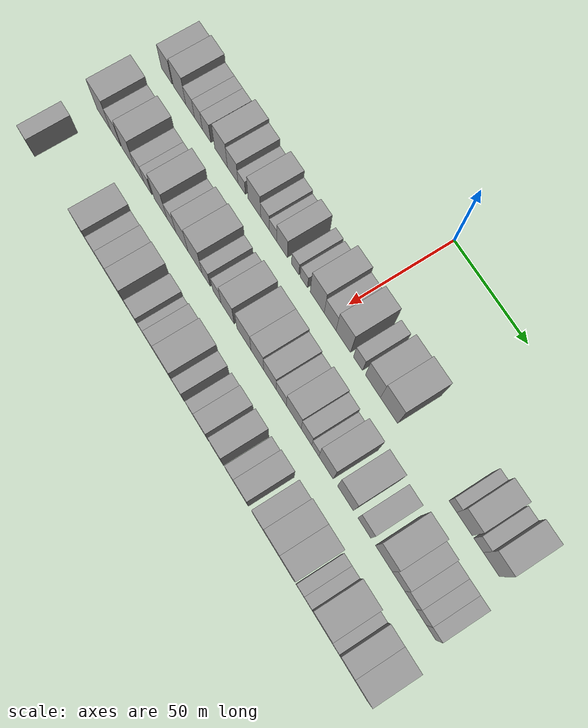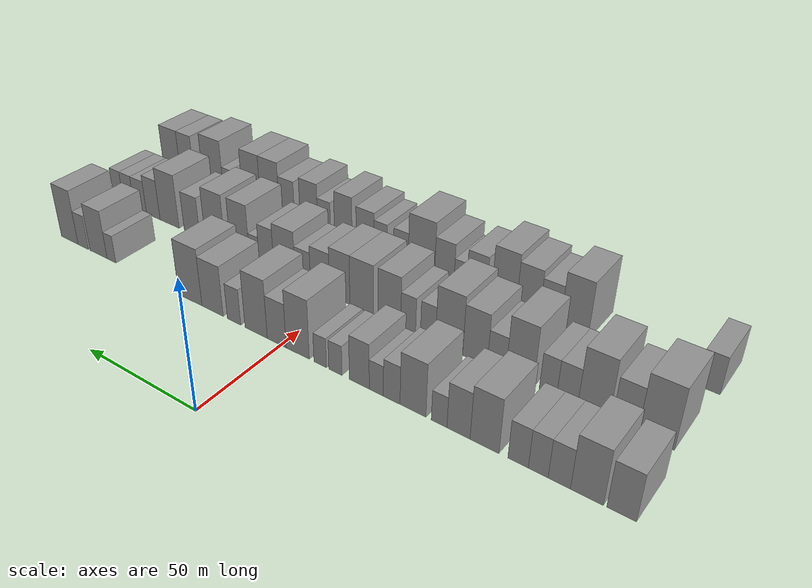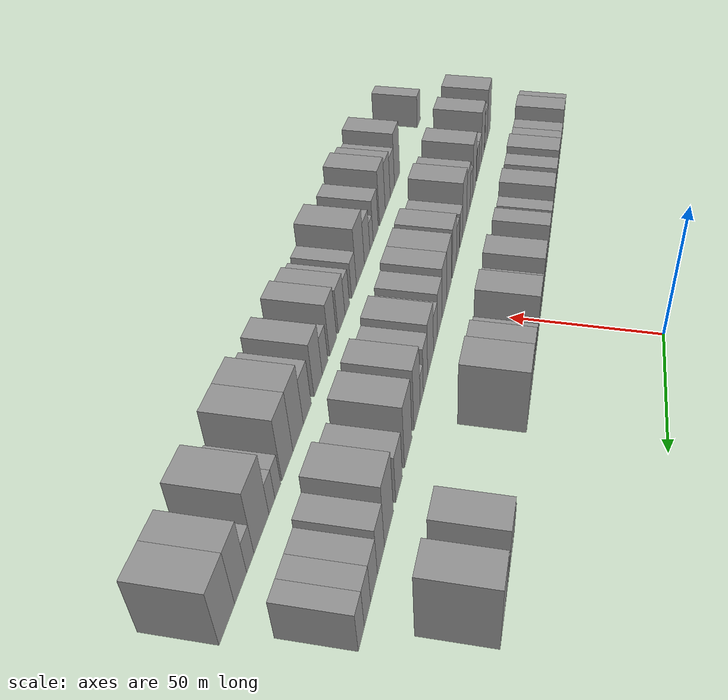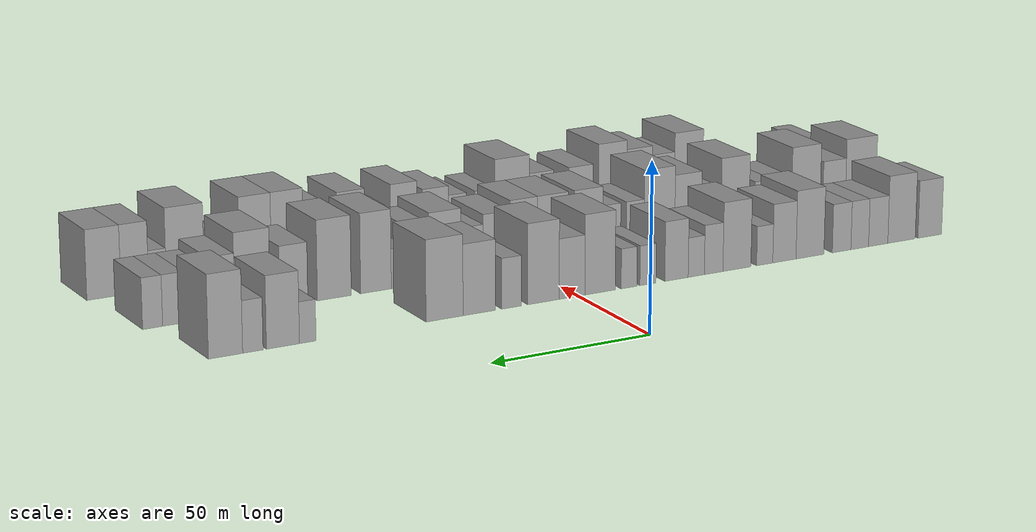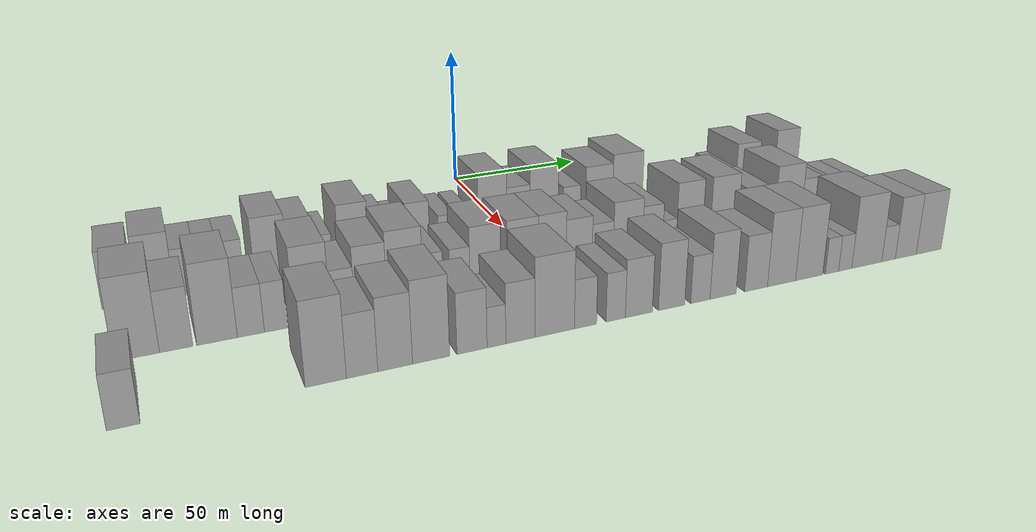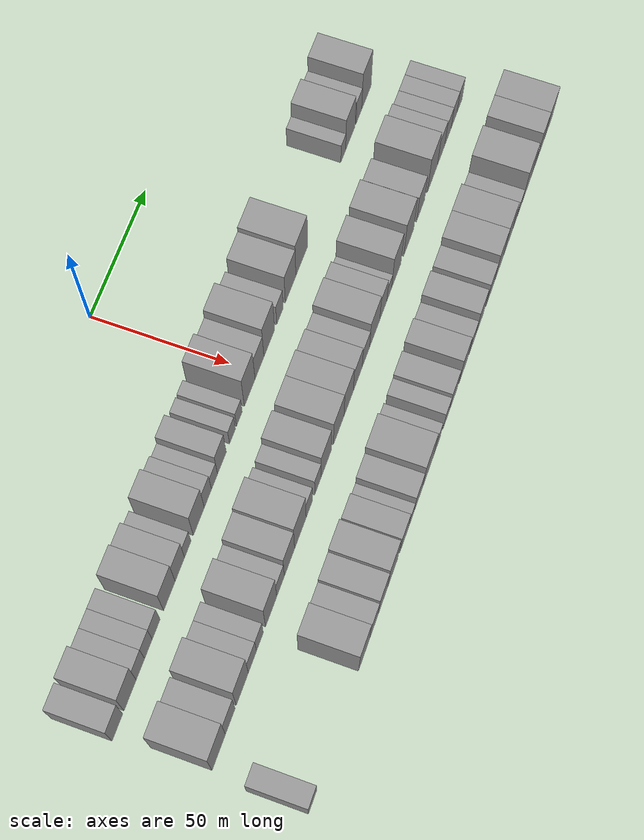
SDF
<sdf version="1.6">
 <world name="default">
  <model name="building_29">
   <static>1</static>
   <pose>50.0000 -123.2638 0 0.000000 0.000000 0.000000</pose>
   <link name="link">
    <pose>0 0 9.00 0 0 0</pose>
    <collision name="collision"><geometry><box><size>20.0000 8.7524 18.0000</size></box></geometry></collision>
    <visual name="visual">
     <cast_shadows>0</cast_shadows>
     <geometry><box><size>20.0000 8.7524 18.0000</size></box></geometry>
     <material>
      <script>
       <uri>model://grey_wall/materials/scripts</uri>
       <uri>model://grey_wall/materials/textures</uri>
       <name>vrc/grey_wall</name>
      </script>
     </material>
    </visual>
   </link>
  </model>
  <model name="building_30">
   <static>1</static>
   <pose>50.0000 -112.8413 0 0.000000 0.000000 0.000000</pose>
   <link name="link">
    <pose>0 0 10.50 0 0 0</pose>
    <collision name="collision"><geometry><box><size>20.0000 10.0927 21.0000</size></box></geometry></collision>
    <visual name="visual">
     <cast_shadows>0</cast_shadows>
     <geometry><box><size>20.0000 10.0927 21.0000</size></box></geometry>
     <material>
      <script>
       <uri>model://grey_wall/materials/scripts</uri>
       <uri>model://grey_wall/materials/textures</uri>
       <name>vrc/grey_wall</name>
      </script>
     </material>
    </visual>
   </link>
  </model>
  <model name="building_31">
   <static>1</static>
   <pose>50.0000 -104.2819 0 0.000000 0.000000 0.000000</pose>
   <link name="link">
    <pose>0 0 7.50 0 0 0</pose>
    <collision name="collision"><geometry><box><size>20.0000 7.0259 15.0000</size></box></geometry></collision>
    <visual name="visual">
     <cast_shadows>0</cast_shadows>
     <geometry><box><size>20.0000 7.0259 15.0000</size></box></geometry>
     <material>
      <script>
       <uri>model://grey_wall/materials/scripts</uri>
       <uri>model://grey_wall/materials/textures</uri>
       <name>vrc/grey_wall</name>
      </script>
     </material>
    </visual>
   </link>
  </model>
  <model name="building_32">
   <static>1</static>
   <pose>50.0000 -97.5649 0 0.000000 0.000000 0.000000</pose>
   <link name="link">
    <pose>0 0 7.50 0 0 0</pose>
    <collision name="collision"><geometry><box><size>20.0000 6.4082 15.0000</size></box></geometry></collision>
    <visual name="visual">
     <cast_shadows>0</cast_shadows>
     <geometry><box><size>20.0000 6.4082 15.0000</size></box></geometry>
     <material>
      <script>
       <uri>model://grey_wall/materials/scripts</uri>
       <uri>model://grey_wall/materials/textures</uri>
       <name>vrc/grey_wall</name>
      </script>
     </material>
    </visual>
   </link>
  </model>
  <model name="building_33">
   <static>1</static>
   <pose>50.0000 -91.0051 0 0.000000 0.000000 0.000000</pose>
   <link name="link">
    <pose>0 0 7.50 0 0 0</pose>
    <collision name="collision"><geometry><box><size>20.0000 6.7113 15.0000</size></box></geometry></collision>
    <visual name="visual">
     <cast_shadows>0</cast_shadows>
     <geometry><box><size>20.0000 6.7113 15.0000</size></box></geometry>
     <material>
      <script>
       <uri>model://grey_wall/materials/scripts</uri>
       <uri>model://grey_wall/materials/textures</uri>
       <name>vrc/grey_wall</name>
      </script>
     </material>
    </visual>
   </link>
  </model>
  <model name="building_34">
   <static>1</static>
   <pose>50.0000 -79.6715 0 0.000000 0.000000 0.000000</pose>
   <link name="link">
    <pose>0 0 10.50 0 0 0</pose>
    <collision name="collision"><geometry><box><size>20.0000 9.9561 21.0000</size></box></geometry></collision>
    <visual name="visual">
     <cast_shadows>0</cast_shadows>
     <geometry><box><size>20.0000 9.9561 21.0000</size></box></geometry>
     <material>
      <script>
       <uri>model://grey_wall/materials/scripts</uri>
       <uri>model://grey_wall/materials/textures</uri>
       <name>vrc/grey_wall</name>
      </script>
     </material>
    </visual>
   </link>
  </model>
  <model name="building_35">
   <static>1</static>
   <pose>50.0000 -70.5820 0 0.000000 0.000000 0.000000</pose>
   <link name="link">
    <pose>0 0 9.00 0 0 0</pose>
    <collision name="collision"><geometry><box><size>20.0000 8.2228 18.0000</size></box></geometry></collision>
    <visual name="visual">
     <cast_shadows>0</cast_shadows>
     <geometry><box><size>20.0000 8.2228 18.0000</size></box></geometry>
     <material>
      <script>
       <uri>model://grey_wall/materials/scripts</uri>
       <uri>model://grey_wall/materials/textures</uri>
       <name>vrc/grey_wall</name>
      </script>
     </material>
    </visual>
   </link>
  </model>
  <model name="building_36">
   <static>1</static>
   <pose>50.0000 -63.6314 0 0.000000 0.000000 0.000000</pose>
   <link name="link">
    <pose>0 0 6.00 0 0 0</pose>
    <collision name="collision"><geometry><box><size>20.0000 5.6785 12.0000</size></box></geometry></collision>
    <visual name="visual">
     <cast_shadows>0</cast_shadows>
     <geometry><box><size>20.0000 5.6785 12.0000</size></box></geometry>
     <material>
      <script>
       <uri>model://grey_wall/materials/scripts</uri>
       <uri>model://grey_wall/materials/textures</uri>
       <name>vrc/grey_wall</name>
      </script>
     </material>
    </visual>
   </link>
  </model>
  <model name="building_37">
   <static>1</static>
   <pose>50.0000 -53.9282 0 0.000000 0.000000 0.000000</pose>
   <link name="link">
    <pose>0 0 10.50 0 0 0</pose>
    <collision name="collision"><geometry><box><size>20.0000 9.7278 21.0000</size></box></geometry></collision>
    <visual name="visual">
     <cast_shadows>0</cast_shadows>
     <geometry><box><size>20.0000 9.7278 21.0000</size></box></geometry>
     <material>
      <script>
       <uri>model://grey_wall/materials/scripts</uri>
       <uri>model://grey_wall/materials/textures</uri>
       <name>vrc/grey_wall</name>
      </script>
     </material>
    </visual>
   </link>
  </model>
  <model name="building_38">
   <static>1</static>
   <pose>50.0000 -45.8464 0 0.000000 0.000000 0.000000</pose>
   <link name="link">
    <pose>0 0 7.50 0 0 0</pose>
    <collision name="collision"><geometry><box><size>20.0000 6.4358 15.0000</size></box></geometry></collision>
    <visual name="visual">
     <cast_shadows>0</cast_shadows>
     <geometry><box><size>20.0000 6.4358 15.0000</size></box></geometry>
     <material>
      <script>
       <uri>model://grey_wall/materials/scripts</uri>
       <uri>model://grey_wall/materials/textures</uri>
       <name>vrc/grey_wall</name>
      </script>
     </material>
    </visual>
   </link>
  </model>
  <model name="building_39">
   <static>1</static>
   <pose>50.0000 -39.8545 0 0.000000 0.000000 0.000000</pose>
   <link name="link">
    <pose>0 0 6.00 0 0 0</pose>
    <collision name="collision"><geometry><box><size>20.0000 5.5482 12.0000</size></box></geometry></collision>
    <visual name="visual">
     <cast_shadows>0</cast_shadows>
     <geometry><box><size>20.0000 5.5482 12.0000</size></box></geometry>
     <material>
      <script>
       <uri>model://grey_wall/materials/scripts</uri>
       <uri>model://grey_wall/materials/textures</uri>
       <name>vrc/grey_wall</name>
      </script>
     </material>
    </visual>
   </link>
  </model>
  <model name="building_40">
   <static>1</static>
   <pose>50.0000 -33.0967 0 0.000000 0.000000 0.000000</pose>
   <link name="link">
    <pose>0 0 9.00 0 0 0</pose>
    <collision name="collision"><geometry><box><size>20.0000 7.9673 18.0000</size></box></geometry></collision>
    <visual name="visual">
     <cast_shadows>0</cast_shadows>
     <geometry><box><size>20.0000 7.9673 18.0000</size></box></geometry>
     <material>
      <script>
       <uri>model://grey_wall/materials/scripts</uri>
       <uri>model://grey_wall/materials/textures</uri>
       <name>vrc/grey_wall</name>
      </script>
     </material>
    </visual>
   </link>
  </model>
  <model name="building_41">
   <static>1</static>
   <pose>50.0000 -23.3904 0 0.000000 0.000000 0.000000</pose>
   <link name="link">
    <pose>0 0 6.00 0 0 0</pose>
    <collision name="collision"><geometry><box><size>20.0000 5.4453 12.0000</size></box></geometry></collision>
    <visual name="visual">
     <cast_shadows>0</cast_shadows>
     <geometry><box><size>20.0000 5.4453 12.0000</size></box></geometry>
     <material>
      <script>
       <uri>model://grey_wall/materials/scripts</uri>
       <uri>model://grey_wall/materials/textures</uri>
       <name>vrc/grey_wall</name>
      </script>
     </material>
    </visual>
   </link>
  </model>
  <model name="building_42">
   <static>1</static>
   <pose>50.0000 -17.0258 0 0.000000 0.000000 0.000000</pose>
   <link name="link">
    <pose>0 0 6.00 0 0 0</pose>
    <collision name="collision"><geometry><box><size>20.0000 5.2839 12.0000</size></box></geometry></collision>
    <visual name="visual">
     <cast_shadows>0</cast_shadows>
     <geometry><box><size>20.0000 5.2839 12.0000</size></box></geometry>
     <material>
      <script>
       <uri>model://grey_wall/materials/scripts</uri>
       <uri>model://grey_wall/materials/textures</uri>
       <name>vrc/grey_wall</name>
      </script>
     </material>
    </visual>
   </link>
  </model>
  <model name="building_43">
   <static>1</static>
   <pose>50.0000 -7.3435 0 0.000000 0.000000 0.000000</pose>
   <link name="link">
    <pose>0 0 12.00 0 0 0</pose>
    <collision name="collision"><geometry><box><size>20.0000 10.0807 24.0000</size></box></geometry></collision>
    <visual name="visual">
     <cast_shadows>0</cast_shadows>
     <geometry><box><size>20.0000 10.0807 24.0000</size></box></geometry>
     <material>
      <script>
       <uri>model://grey_wall/materials/scripts</uri>
       <uri>model://grey_wall/materials/textures</uri>
       <name>vrc/grey_wall</name>
      </script>
     </material>
    </visual>
   </link>
  </model>
  <model name="building_44">
   <static>1</static>
   <pose>50.0000 1.9351 0 0.000000 0.000000 0.000000</pose>
   <link name="link">
    <pose>0 0 9.00 0 0 0</pose>
    <collision name="collision"><geometry><box><size>20.0000 8.4766 18.0000</size></box></geometry></collision>
    <visual name="visual">
     <cast_shadows>0</cast_shadows>
     <geometry><box><size>20.0000 8.4766 18.0000</size></box></geometry>
     <material>
      <script>
       <uri>model://grey_wall/materials/scripts</uri>
       <uri>model://grey_wall/materials/textures</uri>
       <name>vrc/grey_wall</name>
      </script>
     </material>
    </visual>
   </link>
  </model>
  <model name="building_45">
   <static>1</static>
   <pose>50.0000 11.3053 0 0.000000 0.000000 0.000000</pose>
   <link name="link">
    <pose>0 0 12.00 0 0 0</pose>
    <collision name="collision"><geometry><box><size>20.0000 10.2639 24.0000</size></box></geometry></collision>
    <visual name="visual">
     <cast_shadows>0</cast_shadows>
     <geometry><box><size>20.0000 10.2639 24.0000</size></box></geometry>
     <material>
      <script>
       <uri>model://grey_wall/materials/scripts</uri>
       <uri>model://grey_wall/materials/textures</uri>
       <name>vrc/grey_wall</name>
      </script>
     </material>
    </visual>
   </link>
  </model>
  <model name="building_46">
   <static>1</static>
   <pose>50.0000 21.6280 0 0.000000 0.000000 0.000000</pose>
   <link name="link">
    <pose>0 0 7.50 0 0 0</pose>
    <collision name="collision"><geometry><box><size>20.0000 6.3814 15.0000</size></box></geometry></collision>
    <visual name="visual">
     <cast_shadows>0</cast_shadows>
     <geometry><box><size>20.0000 6.3814 15.0000</size></box></geometry>
     <material>
      <script>
       <uri>model://grey_wall/materials/scripts</uri>
       <uri>model://grey_wall/materials/textures</uri>
       <name>vrc/grey_wall</name>
      </script>
     </material>
    </visual>
   </link>
  </model>
  <model name="building_47">
   <static>1</static>
   <pose>50.0000 32.0305 0 0.000000 0.000000 0.000000</pose>
   <link name="link">
    <pose>0 0 10.50 0 0 0</pose>
    <collision name="collision"><geometry><box><size>20.0000 10.4237 21.0000</size></box></geometry></collision>
    <visual name="visual">
     <cast_shadows>0</cast_shadows>
     <geometry><box><size>20.0000 10.4237 21.0000</size></box></geometry>
     <material>
      <script>
       <uri>model://grey_wall/materials/scripts</uri>
       <uri>model://grey_wall/materials/textures</uri>
       <name>vrc/grey_wall</name>
      </script>
     </material>
    </visual>
   </link>
  </model>
  <model name="building_48">
   <static>1</static>
   <pose>50.0000 43.1093 0 0.000000 0.000000 0.000000</pose>
   <link name="link">
    <pose>0 0 12.00 0 0 0</pose>
    <collision name="collision"><geometry><box><size>20.0000 11.7338 24.0000</size></box></geometry></collision>
    <visual name="visual">
     <cast_shadows>0</cast_shadows>
     <geometry><box><size>20.0000 11.7338 24.0000</size></box></geometry>
     <material>
      <script>
       <uri>model://grey_wall/materials/scripts</uri>
       <uri>model://grey_wall/materials/textures</uri>
       <name>vrc/grey_wall</name>
      </script>
     </material>
    </visual>
   </link>
  </model>
  <model name="building_49">
   <static>1</static>
   <pose>50.0000 85.4899 0 0.000000 0.000000 0.000000</pose>
   <link name="link">
    <pose>0 0 6.00 0 0 0</pose>
    <collision name="collision"><geometry><box><size>20.0000 5.0091 12.0000</size></box></geometry></collision>
    <visual name="visual">
     <cast_shadows>0</cast_shadows>
     <geometry><box><size>20.0000 5.0091 12.0000</size></box></geometry>
     <material>
      <script>
       <uri>model://grey_wall/materials/scripts</uri>
       <uri>model://grey_wall/materials/textures</uri>
       <name>vrc/grey_wall</name>
      </script>
     </material>
    </visual>
   </link>
  </model>
  <model name="building_50">
   <static>1</static>
   <pose>50.0000 92.9599 0 0.000000 0.000000 0.000000</pose>
   <link name="link">
    <pose>0 0 10.50 0 0 0</pose>
    <collision name="collision"><geometry><box><size>20.0000 9.9309 21.0000</size></box></geometry></collision>
    <visual name="visual">
     <cast_shadows>0</cast_shadows>
     <geometry><box><size>20.0000 9.9309 21.0000</size></box></geometry>
     <material>
      <script>
       <uri>model://grey_wall/materials/scripts</uri>
       <uri>model://grey_wall/materials/textures</uri>
       <name>vrc/grey_wall</name>
      </script>
     </material>
    </visual>
   </link>
  </model>
  <model name="building_51">
   <static>1</static>
   <pose>50.0000 101.9746 0 0.000000 0.000000 0.000000</pose>
   <link name="link">
    <pose>0 0 7.50 0 0 0</pose>
    <collision name="collision"><geometry><box><size>20.0000 6.0986 15.0000</size></box></geometry></collision>
    <visual name="visual">
     <cast_shadows>0</cast_shadows>
     <geometry><box><size>20.0000 6.0986 15.0000</size></box></geometry>
     <material>
      <script>
       <uri>model://grey_wall/materials/scripts</uri>
       <uri>model://grey_wall/materials/textures</uri>
       <name>vrc/grey_wall</name>
      </script>
     </material>
    </visual>
   </link>
  </model>
  <model name="building_52">
   <static>1</static>
   <pose>50.0000 110.0865 0 0.000000 0.000000 0.000000</pose>
   <link name="link">
    <pose>0 0 12.00 0 0 0</pose>
    <collision name="collision"><geometry><box><size>20.0000 10.1251 24.0000</size></box></geometry></collision>
    <visual name="visual">
     <cast_shadows>0</cast_shadows>
     <geometry><box><size>20.0000 10.1251 24.0000</size></box></geometry>
     <material>
      <script>
       <uri>model://grey_wall/materials/scripts</uri>
       <uri>model://grey_wall/materials/textures</uri>
       <name>vrc/grey_wall</name>
      </script>
     </material>
    </visual>
   </link>
  </model>
  <model name="building_102">
   <static>1</static>
   <pose>82.0000 -119.8057 0 0.000000 0.000000 0.000000</pose>
   <link name="link">
    <pose>0 0 12.00 0 0 0</pose>
    <collision name="collision"><geometry><box><size>20.0000 11.4478 24.0000</size></box></geometry></collision>
    <visual name="visual">
     <cast_shadows>0</cast_shadows>
     <geometry><box><size>20.0000 11.4478 24.0000</size></box></geometry>
     <material>
      <script>
       <uri>model://grey_wall/materials/scripts</uri>
       <uri>model://grey_wall/materials/textures</uri>
       <name>vrc/grey_wall</name>
      </script>
     </material>
    </visual>
   </link>
  </model>
  <model name="building_103">
   <static>1</static>
   <pose>82.0000 -109.8684 0 0.000000 0.000000 0.000000</pose>
   <link name="link">
    <pose>0 0 9.00 0 0 0</pose>
    <collision name="collision"><geometry><box><size>20.0000 8.4266 18.0000</size></box></geometry></collision>
    <visual name="visual">
     <cast_shadows>0</cast_shadows>
     <geometry><box><size>20.0000 8.4266 18.0000</size></box></geometry>
     <material>
      <script>
       <uri>model://grey_wall/materials/scripts</uri>
       <uri>model://grey_wall/materials/textures</uri>
       <name>vrc/grey_wall</name>
      </script>
     </material>
    </visual>
   </link>
  </model>
  <model name="building_104">
   <static>1</static>
   <pose>82.0000 -99.3650 0 0.000000 0.000000 0.000000</pose>
   <link name="link">
    <pose>0 0 12.00 0 0 0</pose>
    <collision name="collision"><geometry><box><size>20.0000 10.5802 24.0000</size></box></geometry></collision>
    <visual name="visual">
     <cast_shadows>0</cast_shadows>
     <geometry><box><size>20.0000 10.5802 24.0000</size></box></geometry>
     <material>
      <script>
       <uri>model://grey_wall/materials/scripts</uri>
       <uri>model://grey_wall/materials/textures</uri>
       <name>vrc/grey_wall</name>
      </script>
     </material>
    </visual>
   </link>
  </model>
  <model name="building_105">
   <static>1</static>
   <pose>82.0000 -90.4520 0 0.000000 0.000000 0.000000</pose>
   <link name="link">
    <pose>0 0 7.50 0 0 0</pose>
    <collision name="collision"><geometry><box><size>20.0000 7.2458 15.0000</size></box></geometry></collision>
    <visual name="visual">
     <cast_shadows>0</cast_shadows>
     <geometry><box><size>20.0000 7.2458 15.0000</size></box></geometry>
     <material>
      <script>
       <uri>model://grey_wall/materials/scripts</uri>
       <uri>model://grey_wall/materials/textures</uri>
       <name>vrc/grey_wall</name>
      </script>
     </material>
    </visual>
   </link>
  </model>
  <model name="building_106">
   <static>1</static>
   <pose>82.0000 -83.7524 0 0.000000 0.000000 0.000000</pose>
   <link name="link">
    <pose>0 0 7.50 0 0 0</pose>
    <collision name="collision"><geometry><box><size>20.0000 6.1534 15.0000</size></box></geometry></collision>
    <visual name="visual">
     <cast_shadows>0</cast_shadows>
     <geometry><box><size>20.0000 6.1534 15.0000</size></box></geometry>
     <material>
      <script>
       <uri>model://grey_wall/materials/scripts</uri>
       <uri>model://grey_wall/materials/textures</uri>
       <name>vrc/grey_wall</name>
      </script>
     </material>
    </visual>
   </link>
  </model>
  <model name="building_107">
   <static>1</static>
   <pose>82.0000 -73.6053 0 0.000000 0.000000 0.000000</pose>
   <link name="link">
    <pose>0 0 12.00 0 0 0</pose>
    <collision name="collision"><geometry><box><size>20.0000 10.1406 24.0000</size></box></geometry></collision>
    <visual name="visual">
     <cast_shadows>0</cast_shadows>
     <geometry><box><size>20.0000 10.1406 24.0000</size></box></geometry>
     <material>
      <script>
       <uri>model://grey_wall/materials/scripts</uri>
       <uri>model://grey_wall/materials/textures</uri>
       <name>vrc/grey_wall</name>
      </script>
     </material>
    </visual>
   </link>
  </model>
  <model name="building_108">
   <static>1</static>
   <pose>82.0000 -65.0375 0 0.000000 0.000000 0.000000</pose>
   <link name="link">
    <pose>0 0 7.50 0 0 0</pose>
    <collision name="collision"><geometry><box><size>20.0000 6.9950 15.0000</size></box></geometry></collision>
    <visual name="visual">
     <cast_shadows>0</cast_shadows>
     <geometry><box><size>20.0000 6.9950 15.0000</size></box></geometry>
     <material>
      <script>
       <uri>model://grey_wall/materials/scripts</uri>
       <uri>model://grey_wall/materials/textures</uri>
       <name>vrc/grey_wall</name>
      </script>
     </material>
    </visual>
   </link>
  </model>
  <model name="building_109">
   <static>1</static>
   <pose>82.0000 -56.7947 0 0.000000 0.000000 0.000000</pose>
   <link name="link">
    <pose>0 0 10.50 0 0 0</pose>
    <collision name="collision"><geometry><box><size>20.0000 9.4907 21.0000</size></box></geometry></collision>
    <visual name="visual">
     <cast_shadows>0</cast_shadows>
     <geometry><box><size>20.0000 9.4907 21.0000</size></box></geometry>
     <material>
      <script>
       <uri>model://grey_wall/materials/scripts</uri>
       <uri>model://grey_wall/materials/textures</uri>
       <name>vrc/grey_wall</name>
      </script>
     </material>
    </visual>
   </link>
  </model>
  <model name="building_110">
   <static>1</static>
   <pose>82.0000 -46.6525 0 0.000000 0.000000 0.000000</pose>
   <link name="link">
    <pose>0 0 12.00 0 0 0</pose>
    <collision name="collision"><geometry><box><size>20.0000 10.7937 24.0000</size></box></geometry></collision>
    <visual name="visual">
     <cast_shadows>0</cast_shadows>
     <geometry><box><size>20.0000 10.7937 24.0000</size></box></geometry>
     <material>
      <script>
       <uri>model://grey_wall/materials/scripts</uri>
       <uri>model://grey_wall/materials/textures</uri>
       <name>vrc/grey_wall</name>
      </script>
     </material>
    </visual>
   </link>
  </model>
  <model name="building_111">
   <static>1</static>
   <pose>82.0000 -38.1685 0 0.000000 0.000000 0.000000</pose>
   <link name="link">
    <pose>0 0 7.50 0 0 0</pose>
    <collision name="collision"><geometry><box><size>20.0000 6.1743 15.0000</size></box></geometry></collision>
    <visual name="visual">
     <cast_shadows>0</cast_shadows>
     <geometry><box><size>20.0000 6.1743 15.0000</size></box></geometry>
     <material>
      <script>
       <uri>model://grey_wall/materials/scripts</uri>
       <uri>model://grey_wall/materials/textures</uri>
       <name>vrc/grey_wall</name>
      </script>
     </material>
    </visual>
   </link>
  </model>
  <model name="building_112">
   <static>1</static>
   <pose>82.0000 -29.9631 0 0.000000 0.000000 0.000000</pose>
   <link name="link">
    <pose>0 0 7.50 0 0 0</pose>
    <collision name="collision"><geometry><box><size>20.0000 6.2363 15.0000</size></box></geometry></collision>
    <visual name="visual">
     <cast_shadows>0</cast_shadows>
     <geometry><box><size>20.0000 6.2363 15.0000</size></box></geometry>
     <material>
      <script>
       <uri>model://grey_wall/materials/scripts</uri>
       <uri>model://grey_wall/materials/textures</uri>
       <name>vrc/grey_wall</name>
      </script>
     </material>
    </visual>
   </link>
  </model>
  <model name="building_113">
   <static>1</static>
   <pose>82.0000 -21.9570 0 0.000000 0.000000 0.000000</pose>
   <link name="link">
    <pose>0 0 10.50 0 0 0</pose>
    <collision name="collision"><geometry><box><size>20.0000 9.7760 21.0000</size></box></geometry></collision>
    <visual name="visual">
     <cast_shadows>0</cast_shadows>
     <geometry><box><size>20.0000 9.7760 21.0000</size></box></geometry>
     <material>
      <script>
       <uri>model://grey_wall/materials/scripts</uri>
       <uri>model://grey_wall/materials/textures</uri>
       <name>vrc/grey_wall</name>
      </script>
     </material>
    </visual>
   </link>
  </model>
  <model name="building_114">
   <static>1</static>
   <pose>82.0000 -9.8569 0 0.000000 0.000000 0.000000</pose>
   <link name="link">
    <pose>0 0 10.50 0 0 0</pose>
    <collision name="collision"><geometry><box><size>20.0000 10.4240 21.0000</size></box></geometry></collision>
    <visual name="visual">
     <cast_shadows>0</cast_shadows>
     <geometry><box><size>20.0000 10.4240 21.0000</size></box></geometry>
     <material>
      <script>
       <uri>model://grey_wall/materials/scripts</uri>
       <uri>model://grey_wall/materials/textures</uri>
       <name>vrc/grey_wall</name>
      </script>
     </material>
    </visual>
   </link>
  </model>
  <model name="building_115">
   <static>1</static>
   <pose>82.0000 -0.0208 0 0.000000 0.000000 0.000000</pose>
   <link name="link">
    <pose>0 0 10.50 0 0 0</pose>
    <collision name="collision"><geometry><box><size>20.0000 9.2483 21.0000</size></box></geometry></collision>
    <visual name="visual">
     <cast_shadows>0</cast_shadows>
     <geometry><box><size>20.0000 9.2483 21.0000</size></box></geometry>
     <material>
      <script>
       <uri>model://grey_wall/materials/scripts</uri>
       <uri>model://grey_wall/materials/textures</uri>
       <name>vrc/grey_wall</name>
      </script>
     </material>
    </visual>
   </link>
  </model>
  <model name="building_116">
   <static>1</static>
   <pose>82.0000 9.0560 0 0.000000 0.000000 0.000000</pose>
   <link name="link">
    <pose>0 0 9.00 0 0 0</pose>
    <collision name="collision"><geometry><box><size>20.0000 8.9052 18.0000</size></box></geometry></collision>
    <visual name="visual">
     <cast_shadows>0</cast_shadows>
     <geometry><box><size>20.0000 8.9052 18.0000</size></box></geometry>
     <material>
      <script>
       <uri>model://grey_wall/materials/scripts</uri>
       <uri>model://grey_wall/materials/textures</uri>
       <name>vrc/grey_wall</name>
      </script>
     </material>
    </visual>
   </link>
  </model>
  <model name="building_117">
   <static>1</static>
   <pose>82.0000 17.2116 0 0.000000 0.000000 0.000000</pose>
   <link name="link">
    <pose>0 0 7.50 0 0 0</pose>
    <collision name="collision"><geometry><box><size>20.0000 7.4060 15.0000</size></box></geometry></collision>
    <visual name="visual">
     <cast_shadows>0</cast_shadows>
     <geometry><box><size>20.0000 7.4060 15.0000</size></box></geometry>
     <material>
      <script>
       <uri>model://grey_wall/materials/scripts</uri>
       <uri>model://grey_wall/materials/textures</uri>
       <name>vrc/grey_wall</name>
      </script>
     </material>
    </visual>
   </link>
  </model>
  <model name="building_118">
   <static>1</static>
   <pose>82.0000 26.1264 0 0.000000 0.000000 0.000000</pose>
   <link name="link">
    <pose>0 0 10.50 0 0 0</pose>
    <collision name="collision"><geometry><box><size>20.0000 10.4236 21.0000</size></box></geometry></collision>
    <visual name="visual">
     <cast_shadows>0</cast_shadows>
     <geometry><box><size>20.0000 10.4236 21.0000</size></box></geometry>
     <material>
      <script>
       <uri>model://grey_wall/materials/scripts</uri>
       <uri>model://grey_wall/materials/textures</uri>
       <name>vrc/grey_wall</name>
      </script>
     </material>
    </visual>
   </link>
  </model>
  <model name="building_119">
   <static>1</static>
   <pose>82.0000 35.0071 0 0.000000 0.000000 0.000000</pose>
   <link name="link">
    <pose>0 0 9.00 0 0 0</pose>
    <collision name="collision"><geometry><box><size>20.0000 7.3377 18.0000</size></box></geometry></collision>
    <visual name="visual">
     <cast_shadows>0</cast_shadows>
     <geometry><box><size>20.0000 7.3377 18.0000</size></box></geometry>
     <material>
      <script>
       <uri>model://grey_wall/materials/scripts</uri>
       <uri>model://grey_wall/materials/textures</uri>
       <name>vrc/grey_wall</name>
      </script>
     </material>
    </visual>
   </link>
  </model>
  <model name="building_120">
   <static>1</static>
   <pose>82.0000 41.1804 0 0.000000 0.000000 0.000000</pose>
   <link name="link">
    <pose>0 0 6.00 0 0 0</pose>
    <collision name="collision"><geometry><box><size>20.0000 5.0089 12.0000</size></box></geometry></collision>
    <visual name="visual">
     <cast_shadows>0</cast_shadows>
     <geometry><box><size>20.0000 5.0089 12.0000</size></box></geometry>
     <material>
      <script>
       <uri>model://grey_wall/materials/scripts</uri>
       <uri>model://grey_wall/materials/textures</uri>
       <name>vrc/grey_wall</name>
      </script>
     </material>
    </visual>
   </link>
  </model>
  <model name="building_121">
   <static>1</static>
   <pose>82.0000 48.6120 0 0.000000 0.000000 0.000000</pose>
   <link name="link">
    <pose>0 0 12.00 0 0 0</pose>
    <collision name="collision"><geometry><box><size>20.0000 9.8542 24.0000</size></box></geometry></collision>
    <visual name="visual">
     <cast_shadows>0</cast_shadows>
     <geometry><box><size>20.0000 9.8542 24.0000</size></box></geometry>
     <material>
      <script>
       <uri>model://grey_wall/materials/scripts</uri>
       <uri>model://grey_wall/materials/textures</uri>
       <name>vrc/grey_wall</name>
      </script>
     </material>
    </visual>
   </link>
  </model>
  <model name="building_122">
   <static>1</static>
   <pose>82.0000 61.9054 0 0.000000 0.000000 0.000000</pose>
   <link name="link">
    <pose>0 0 12.00 0 0 0</pose>
    <collision name="collision"><geometry><box><size>20.0000 10.7326 24.0000</size></box></geometry></collision>
    <visual name="visual">
     <cast_shadows>0</cast_shadows>
     <geometry><box><size>20.0000 10.7326 24.0000</size></box></geometry>
     <material>
      <script>
       <uri>model://grey_wall/materials/scripts</uri>
       <uri>model://grey_wall/materials/textures</uri>
       <name>vrc/grey_wall</name>
      </script>
     </material>
    </visual>
   </link>
  </model>
  <model name="building_123">
   <static>1</static>
   <pose>82.0000 74.6354 0 0.000000 0.000000 0.000000</pose>
   <link name="link">
    <pose>0 0 9.00 0 0 0</pose>
    <collision name="collision"><geometry><box><size>20.0000 8.7275 18.0000</size></box></geometry></collision>
    <visual name="visual">
     <cast_shadows>0</cast_shadows>
     <geometry><box><size>20.0000 8.7275 18.0000</size></box></geometry>
     <material>
      <script>
       <uri>model://grey_wall/materials/scripts</uri>
       <uri>model://grey_wall/materials/textures</uri>
       <name>vrc/grey_wall</name>
      </script>
     </material>
    </visual>
   </link>
  </model>
  <model name="building_124">
   <static>1</static>
   <pose>82.0000 87.4886 0 0.000000 0.000000 0.000000</pose>
   <link name="link">
    <pose>0 0 12.00 0 0 0</pose>
    <collision name="collision"><geometry><box><size>20.0000 10.9789 24.0000</size></box></geometry></collision>
    <visual name="visual">
     <cast_shadows>0</cast_shadows>
     <geometry><box><size>20.0000 10.9789 24.0000</size></box></geometry>
     <material>
      <script>
       <uri>model://grey_wall/materials/scripts</uri>
       <uri>model://grey_wall/materials/textures</uri>
       <name>vrc/grey_wall</name>
      </script>
     </material>
    </visual>
   </link>
  </model>
  <model name="building_125">
   <static>1</static>
   <pose>82.0000 97.0021 0 0.000000 0.000000 0.000000</pose>
   <link name="link">
    <pose>0 0 9.00 0 0 0</pose>
    <collision name="collision"><geometry><box><size>20.0000 8.0480 18.0000</size></box></geometry></collision>
    <visual name="visual">
     <cast_shadows>0</cast_shadows>
     <geometry><box><size>20.0000 8.0480 18.0000</size></box></geometry>
     <material>
      <script>
       <uri>model://grey_wall/materials/scripts</uri>
       <uri>model://grey_wall/materials/textures</uri>
       <name>vrc/grey_wall</name>
      </script>
     </material>
    </visual>
   </link>
  </model>
  <model name="building_126">
   <static>1</static>
   <pose>82.0000 104.6953 0 0.000000 0.000000 0.000000</pose>
   <link name="link">
    <pose>0 0 7.50 0 0 0</pose>
    <collision name="collision"><geometry><box><size>20.0000 7.3383 15.0000</size></box></geometry></collision>
    <visual name="visual">
     <cast_shadows>0</cast_shadows>
     <geometry><box><size>20.0000 7.3383 15.0000</size></box></geometry>
     <material>
      <script>
       <uri>model://grey_wall/materials/scripts</uri>
       <uri>model://grey_wall/materials/textures</uri>
       <name>vrc/grey_wall</name>
      </script>
     </material>
    </visual>
   </link>
  </model>
  <model name="building_127">
   <static>1</static>
   <pose>82.0000 111.6538 0 0.000000 0.000000 0.000000</pose>
   <link name="link">
    <pose>0 0 7.50 0 0 0</pose>
    <collision name="collision"><geometry><box><size>20.0000 6.5787 15.0000</size></box></geometry></collision>
    <visual name="visual">
     <cast_shadows>0</cast_shadows>
     <geometry><box><size>20.0000 6.5787 15.0000</size></box></geometry>
     <material>
      <script>
       <uri>model://grey_wall/materials/scripts</uri>
       <uri>model://grey_wall/materials/textures</uri>
       <name>vrc/grey_wall</name>
      </script>
     </material>
    </visual>
   </link>
  </model>
  <model name="building_128">
   <static>1</static>
   <pose>82.0000 117.9527 0 0.000000 0.000000 0.000000</pose>
   <link name="link">
    <pose>0 0 7.50 0 0 0</pose>
    <collision name="collision"><geometry><box><size>20.0000 6.0192 15.0000</size></box></geometry></collision>
    <visual name="visual">
     <cast_shadows>0</cast_shadows>
     <geometry><box><size>20.0000 6.0192 15.0000</size></box></geometry>
     <material>
      <script>
       <uri>model://grey_wall/materials/scripts</uri>
       <uri>model://grey_wall/materials/textures</uri>
       <name>vrc/grey_wall</name>
      </script>
     </material>
    </visual>
   </link>
  </model>
  <model name="building_177">
   <static>1</static>
   <pose>114.0000 -124.0846 0 0.000000 0.000000 0.000000</pose>
   <link name="link">
    <pose>0 0 7.50 0 0 0</pose>
    <collision name="collision"><geometry><box><size>20.0000 7.3640 15.0000</size></box></geometry></collision>
    <visual name="visual">
     <cast_shadows>0</cast_shadows>
     <geometry><box><size>20.0000 7.3640 15.0000</size></box></geometry>
     <material>
      <script>
       <uri>model://grey_wall/materials/scripts</uri>
       <uri>model://grey_wall/materials/textures</uri>
       <name>vrc/grey_wall</name>
      </script>
     </material>
    </visual>
   </link>
  </model>
  <model name="building_178">
   <static>1</static>
   <pose>114.0000 -76.7485 0 0.000000 0.000000 0.000000</pose>
   <link name="link">
    <pose>0 0 12.00 0 0 0</pose>
    <collision name="collision"><geometry><box><size>20.0000 10.4360 24.0000</size></box></geometry></collision>
    <visual name="visual">
     <cast_shadows>0</cast_shadows>
     <geometry><box><size>20.0000 10.4360 24.0000</size></box></geometry>
     <material>
      <script>
       <uri>model://grey_wall/materials/scripts</uri>
       <uri>model://grey_wall/materials/textures</uri>
       <name>vrc/grey_wall</name>
      </script>
     </material>
    </visual>
   </link>
  </model>
  <model name="building_179">
   <static>1</static>
   <pose>114.0000 -67.4690 0 0.000000 0.000000 0.000000</pose>
   <link name="link">
    <pose>0 0 9.00 0 0 0</pose>
    <collision name="collision"><geometry><box><size>20.0000 8.1229 18.0000</size></box></geometry></collision>
    <visual name="visual">
     <cast_shadows>0</cast_shadows>
     <geometry><box><size>20.0000 8.1229 18.0000</size></box></geometry>
     <material>
      <script>
       <uri>model://grey_wall/materials/scripts</uri>
       <uri>model://grey_wall/materials/textures</uri>
       <name>vrc/grey_wall</name>
      </script>
     </material>
    </visual>
   </link>
  </model>
  <model name="building_180">
   <static>1</static>
   <pose>114.0000 -58.8135 0 0.000000 0.000000 0.000000</pose>
   <link name="link">
    <pose>0 0 10.50 0 0 0</pose>
    <collision name="collision"><geometry><box><size>20.0000 9.1882 21.0000</size></box></geometry></collision>
    <visual name="visual">
     <cast_shadows>0</cast_shadows>
     <geometry><box><size>20.0000 9.1882 21.0000</size></box></geometry>
     <material>
      <script>
       <uri>model://grey_wall/materials/scripts</uri>
       <uri>model://grey_wall/materials/textures</uri>
       <name>vrc/grey_wall</name>
      </script>
     </material>
    </visual>
   </link>
  </model>
  <model name="building_181">
   <static>1</static>
   <pose>114.0000 -49.1539 0 0.000000 0.000000 0.000000</pose>
   <link name="link">
    <pose>0 0 12.00 0 0 0</pose>
    <collision name="collision"><geometry><box><size>20.0000 10.1310 24.0000</size></box></geometry></collision>
    <visual name="visual">
     <cast_shadows>0</cast_shadows>
     <geometry><box><size>20.0000 10.1310 24.0000</size></box></geometry>
     <material>
      <script>
       <uri>model://grey_wall/materials/scripts</uri>
       <uri>model://grey_wall/materials/textures</uri>
       <name>vrc/grey_wall</name>
      </script>
     </material>
    </visual>
   </link>
  </model>
  <model name="building_182">
   <static>1</static>
   <pose>114.0000 -37.8273 0 0.000000 0.000000 0.000000</pose>
   <link name="link">
    <pose>0 0 9.00 0 0 0</pose>
    <collision name="collision"><geometry><box><size>20.0000 8.5222 18.0000</size></box></geometry></collision>
    <visual name="visual">
     <cast_shadows>0</cast_shadows>
     <geometry><box><size>20.0000 8.5222 18.0000</size></box></geometry>
     <material>
      <script>
       <uri>model://grey_wall/materials/scripts</uri>
       <uri>model://grey_wall/materials/textures</uri>
       <name>vrc/grey_wall</name>
      </script>
     </material>
    </visual>
   </link>
  </model>
  <model name="building_183">
   <static>1</static>
   <pose>114.0000 -30.8784 0 0.000000 0.000000 0.000000</pose>
   <link name="link">
    <pose>0 0 6.00 0 0 0</pose>
    <collision name="collision"><geometry><box><size>20.0000 5.3757 12.0000</size></box></geometry></collision>
    <visual name="visual">
     <cast_shadows>0</cast_shadows>
     <geometry><box><size>20.0000 5.3757 12.0000</size></box></geometry>
     <material>
      <script>
       <uri>model://grey_wall/materials/scripts</uri>
       <uri>model://grey_wall/materials/textures</uri>
       <name>vrc/grey_wall</name>
      </script>
     </material>
    </visual>
   </link>
  </model>
  <model name="building_184">
   <static>1</static>
   <pose>114.0000 -23.9341 0 0.000000 0.000000 0.000000</pose>
   <link name="link">
    <pose>0 0 9.00 0 0 0</pose>
    <collision name="collision"><geometry><box><size>20.0000 8.5129 18.0000</size></box></geometry></collision>
    <visual name="visual">
     <cast_shadows>0</cast_shadows>
     <geometry><box><size>20.0000 8.5129 18.0000</size></box></geometry>
     <material>
      <script>
       <uri>model://grey_wall/materials/scripts</uri>
       <uri>model://grey_wall/materials/textures</uri>
       <name>vrc/grey_wall</name>
      </script>
     </material>
    </visual>
   </link>
  </model>
  <model name="building_185">
   <static>1</static>
   <pose>114.0000 -13.7239 0 0.000000 0.000000 0.000000</pose>
   <link name="link">
    <pose>0 0 12.00 0 0 0</pose>
    <collision name="collision"><geometry><box><size>20.0000 11.9074 24.0000</size></box></geometry></collision>
    <visual name="visual">
     <cast_shadows>0</cast_shadows>
     <geometry><box><size>20.0000 11.9074 24.0000</size></box></geometry>
     <material>
      <script>
       <uri>model://grey_wall/materials/scripts</uri>
       <uri>model://grey_wall/materials/textures</uri>
       <name>vrc/grey_wall</name>
      </script>
     </material>
    </visual>
   </link>
  </model>
  <model name="building_186">
   <static>1</static>
   <pose>114.0000 -4.3629 0 0.000000 0.000000 0.000000</pose>
   <link name="link">
    <pose>0 0 7.50 0 0 0</pose>
    <collision name="collision"><geometry><box><size>20.0000 6.8147 15.0000</size></box></geometry></collision>
    <visual name="visual">
     <cast_shadows>0</cast_shadows>
     <geometry><box><size>20.0000 6.8147 15.0000</size></box></geometry>
     <material>
      <script>
       <uri>model://grey_wall/materials/scripts</uri>
       <uri>model://grey_wall/materials/textures</uri>
       <name>vrc/grey_wall</name>
      </script>
     </material>
    </visual>
   </link>
  </model>
  <model name="building_187">
   <static>1</static>
   <pose>114.0000 5.0965 0 0.000000 0.000000 0.000000</pose>
   <link name="link">
    <pose>0 0 7.50 0 0 0</pose>
    <collision name="collision"><geometry><box><size>20.0000 6.1041 15.0000</size></box></geometry></collision>
    <visual name="visual">
     <cast_shadows>0</cast_shadows>
     <geometry><box><size>20.0000 6.1041 15.0000</size></box></geometry>
     <material>
      <script>
       <uri>model://grey_wall/materials/scripts</uri>
       <uri>model://grey_wall/materials/textures</uri>
       <name>vrc/grey_wall</name>
      </script>
     </material>
    </visual>
   </link>
  </model>
  <model name="building_188">
   <static>1</static>
   <pose>114.0000 12.5118 0 0.000000 0.000000 0.000000</pose>
   <link name="link">
    <pose>0 0 9.00 0 0 0</pose>
    <collision name="collision"><geometry><box><size>20.0000 8.7264 18.0000</size></box></geometry></collision>
    <visual name="visual">
     <cast_shadows>0</cast_shadows>
     <geometry><box><size>20.0000 8.7264 18.0000</size></box></geometry>
     <material>
      <script>
       <uri>model://grey_wall/materials/scripts</uri>
       <uri>model://grey_wall/materials/textures</uri>
       <name>vrc/grey_wall</name>
      </script>
     </material>
    </visual>
   </link>
  </model>
  <model name="building_189">
   <static>1</static>
   <pose>114.0000 23.2560 0 0.000000 0.000000 0.000000</pose>
   <link name="link">
    <pose>0 0 10.50 0 0 0</pose>
    <collision name="collision"><geometry><box><size>20.0000 8.7620 21.0000</size></box></geometry></collision>
    <visual name="visual">
     <cast_shadows>0</cast_shadows>
     <geometry><box><size>20.0000 8.7620 21.0000</size></box></geometry>
     <material>
      <script>
       <uri>model://grey_wall/materials/scripts</uri>
       <uri>model://grey_wall/materials/textures</uri>
       <name>vrc/grey_wall</name>
      </script>
     </material>
    </visual>
   </link>
  </model>
  <model name="building_190">
   <static>1</static>
   <pose>114.0000 32.9273 0 0.000000 0.000000 0.000000</pose>
   <link name="link">
    <pose>0 0 7.50 0 0 0</pose>
    <collision name="collision"><geometry><box><size>20.0000 6.5805 15.0000</size></box></geometry></collision>
    <visual name="visual">
     <cast_shadows>0</cast_shadows>
     <geometry><box><size>20.0000 6.5805 15.0000</size></box></geometry>
     <material>
      <script>
       <uri>model://grey_wall/materials/scripts</uri>
       <uri>model://grey_wall/materials/textures</uri>
       <name>vrc/grey_wall</name>
      </script>
     </material>
    </visual>
   </link>
  </model>
  <model name="building_191">
   <static>1</static>
   <pose>114.0000 40.7739 0 0.000000 0.000000 0.000000</pose>
   <link name="link">
    <pose>0 0 10.50 0 0 0</pose>
    <collision name="collision"><geometry><box><size>20.0000 9.1126 21.0000</size></box></geometry></collision>
    <visual name="visual">
     <cast_shadows>0</cast_shadows>
     <geometry><box><size>20.0000 9.1126 21.0000</size></box></geometry>
     <material>
      <script>
       <uri>model://grey_wall/materials/scripts</uri>
       <uri>model://grey_wall/materials/textures</uri>
       <name>vrc/grey_wall</name>
      </script>
     </material>
    </visual>
   </link>
  </model>
  <model name="building_192">
   <static>1</static>
   <pose>114.0000 52.4194 0 0.000000 0.000000 0.000000</pose>
   <link name="link">
    <pose>0 0 9.00 0 0 0</pose>
    <collision name="collision"><geometry><box><size>20.0000 8.1785 18.0000</size></box></geometry></collision>
    <visual name="visual">
     <cast_shadows>0</cast_shadows>
     <geometry><box><size>20.0000 8.1785 18.0000</size></box></geometry>
     <material>
      <script>
       <uri>model://grey_wall/materials/scripts</uri>
       <uri>model://grey_wall/materials/textures</uri>
       <name>vrc/grey_wall</name>
      </script>
     </material>
    </visual>
   </link>
  </model>
  <model name="building_193">
   <static>1</static>
   <pose>114.0000 61.6758 0 0.000000 0.000000 0.000000</pose>
   <link name="link">
    <pose>0 0 12.00 0 0 0</pose>
    <collision name="collision"><geometry><box><size>20.0000 10.3343 24.0000</size></box></geometry></collision>
    <visual name="visual">
     <cast_shadows>0</cast_shadows>
     <geometry><box><size>20.0000 10.3343 24.0000</size></box></geometry>
     <material>
      <script>
       <uri>model://grey_wall/materials/scripts</uri>
       <uri>model://grey_wall/materials/textures</uri>
       <name>vrc/grey_wall</name>
      </script>
     </material>
    </visual>
   </link>
  </model>
  <model name="building_194">
   <static>1</static>
   <pose>114.0000 71.9471 0 0.000000 0.000000 0.000000</pose>
   <link name="link">
    <pose>0 0 12.00 0 0 0</pose>
    <collision name="collision"><geometry><box><size>20.0000 10.2083 24.0000</size></box></geometry></collision>
    <visual name="visual">
     <cast_shadows>0</cast_shadows>
     <geometry><box><size>20.0000 10.2083 24.0000</size></box></geometry>
     <material>
      <script>
       <uri>model://grey_wall/materials/scripts</uri>
       <uri>model://grey_wall/materials/textures</uri>
       <name>vrc/grey_wall</name>
      </script>
     </material>
    </visual>
   </link>
  </model>
  <model name="building_195">
   <static>1</static>
   <pose>114.0000 80.5943 0 0.000000 0.000000 0.000000</pose>
   <link name="link">
    <pose>0 0 6.00 0 0 0</pose>
    <collision name="collision"><geometry><box><size>20.0000 5.0862 12.0000</size></box></geometry></collision>
    <visual name="visual">
     <cast_shadows>0</cast_shadows>
     <geometry><box><size>20.0000 5.0862 12.0000</size></box></geometry>
     <material>
      <script>
       <uri>model://grey_wall/materials/scripts</uri>
       <uri>model://grey_wall/materials/textures</uri>
       <name>vrc/grey_wall</name>
      </script>
     </material>
    </visual>
   </link>
  </model>
  <model name="building_196">
   <static>1</static>
   <pose>114.0000 85.6971 0 0.000000 0.000000 0.000000</pose>
   <link name="link">
    <pose>0 0 6.00 0 0 0</pose>
    <collision name="collision"><geometry><box><size>20.0000 5.1195 12.0000</size></box></geometry></collision>
    <visual name="visual">
     <cast_shadows>0</cast_shadows>
     <geometry><box><size>20.0000 5.1195 12.0000</size></box></geometry>
     <material>
      <script>
       <uri>model://grey_wall/materials/scripts</uri>
       <uri>model://grey_wall/materials/textures</uri>
       <name>vrc/grey_wall</name>
      </script>
     </material>
    </visual>
   </link>
  </model>
  <model name="building_197">
   <static>1</static>
   <pose>114.0000 94.2268 0 0.000000 0.000000 0.000000</pose>
   <link name="link">
    <pose>0 0 12.00 0 0 0</pose>
    <collision name="collision"><geometry><box><size>20.0000 11.9398 24.0000</size></box></geometry></collision>
    <visual name="visual">
     <cast_shadows>0</cast_shadows>
     <geometry><box><size>20.0000 11.9398 24.0000</size></box></geometry>
     <material>
      <script>
       <uri>model://grey_wall/materials/scripts</uri>
       <uri>model://grey_wall/materials/textures</uri>
       <name>vrc/grey_wall</name>
      </script>
     </material>
    </visual>
   </link>
  </model>
  <model name="building_198">
   <static>1</static>
   <pose>114.0000 102.9414 0 0.000000 0.000000 0.000000</pose>
   <link name="link">
    <pose>0 0 6.00 0 0 0</pose>
    <collision name="collision"><geometry><box><size>20.0000 5.4894 12.0000</size></box></geometry></collision>
    <visual name="visual">
     <cast_shadows>0</cast_shadows>
     <geometry><box><size>20.0000 5.4894 12.0000</size></box></geometry>
     <material>
      <script>
       <uri>model://grey_wall/materials/scripts</uri>
       <uri>model://grey_wall/materials/textures</uri>
       <name>vrc/grey_wall</name>
      </script>
     </material>
    </visual>
   </link>
  </model>
  <model name="building_199">
   <static>1</static>
   <pose>114.0000 109.9793 0 0.000000 0.000000 0.000000</pose>
   <link name="link">
    <pose>0 0 10.50 0 0 0</pose>
    <collision name="collision"><geometry><box><size>20.0000 8.5865 21.0000</size></box></geometry></collision>
    <visual name="visual">
     <cast_shadows>0</cast_shadows>
     <geometry><box><size>20.0000 8.5865 21.0000</size></box></geometry>
     <material>
      <script>
       <uri>model://grey_wall/materials/scripts</uri>
       <uri>model://grey_wall/materials/textures</uri>
       <name>vrc/grey_wall</name>
      </script>
     </material>
    </visual>
   </link>
  </model>
  <model name="building_200">
   <static>1</static>
   <pose>114.0000 119.5129 0 0.000000 0.000000 0.000000</pose>
   <link name="link">
    <pose>0 0 10.50 0 0 0</pose>
    <collision name="collision"><geometry><box><size>20.0000 10.4807 21.0000</size></box></geometry></collision>
    <visual name="visual">
     <cast_shadows>0</cast_shadows>
     <geometry><box><size>20.0000 10.4807 21.0000</size></box></geometry>
     <material>
      <script>
       <uri>model://grey_wall/materials/scripts</uri>
       <uri>model://grey_wall/materials/textures</uri>
       <name>vrc/grey_wall</name>
      </script>
     </material>
    </visual>
   </link>
  </model>
 </world>
</sdf>
